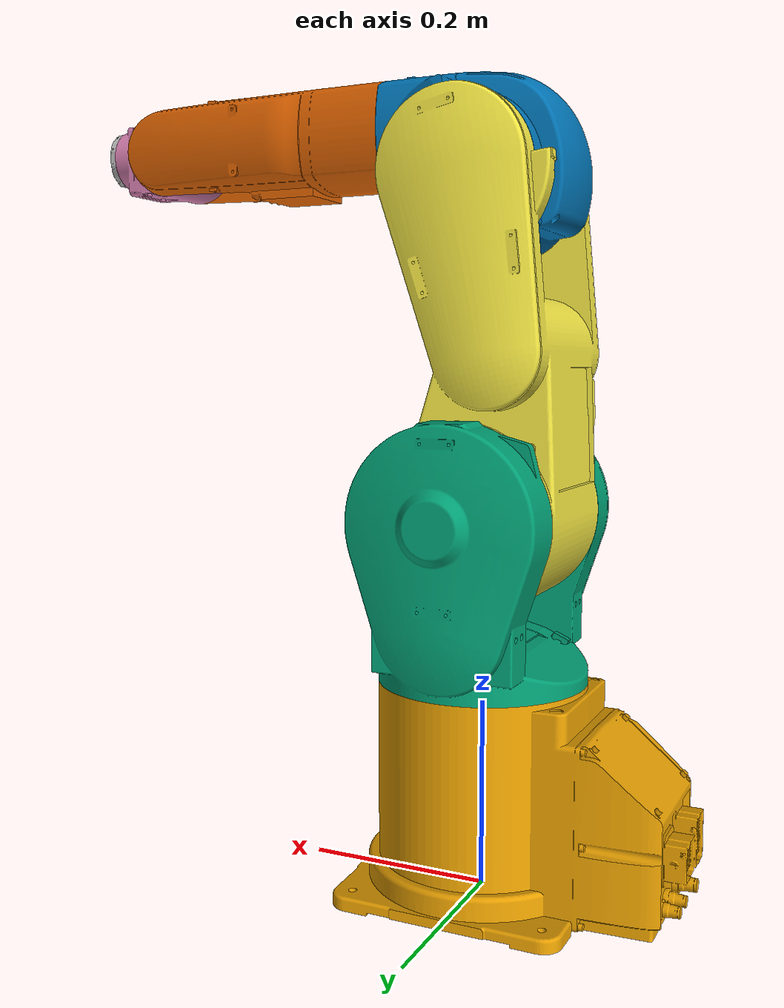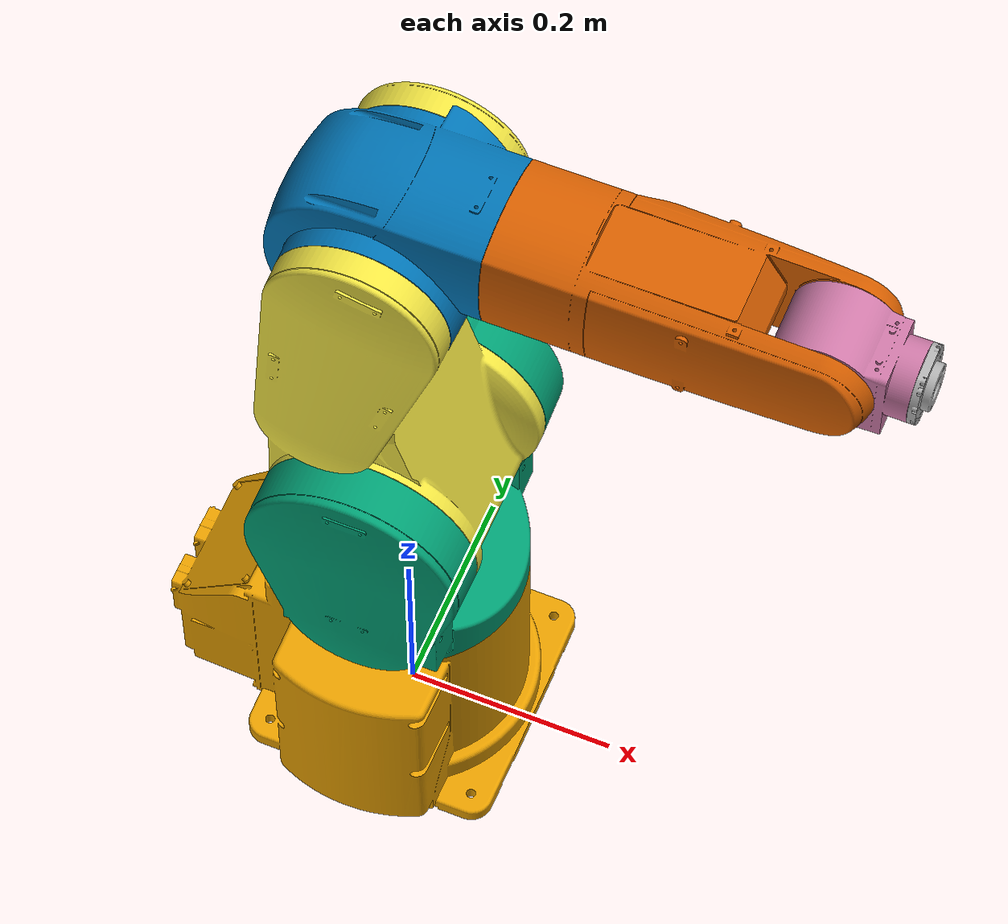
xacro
<?xml version="1.0"?>
<robot name="rv7f" xmlns:xacro="http://ros.org/wiki/xacro">
  <!-- Include -->
  <xacro:include filename="$(find mitsubishi_rv7f_description)/urdf/common.xacro" />
  <xacro:include filename="$(find mitsubishi_rv7f_description)/urdf/materials.xacro" />
  <xacro:include filename="$(find mitsubishi_rv7f_description)/urdf/rv7f/body.urdf.xacro" />
  <xacro:include filename="$(find mitsubishi_rv7f_description)/urdf/rv7f/body.gazebo.xacro"/>
  <xacro:include filename="$(find mitsubishi_rv7f_description)/urdf/rv7f/body.transmission.xacro"/>

  <!-- Radius Limits -->
  <xacro:property name="J1_upper_limit" value="${240*M_PI/180.0}"/>
  <xacro:property name="J1_lower_limit" value="-${J1_upper_limit}"/>

  <xacro:property name="J2_upper_limit" value="${125*M_PI/180.0}"/>
  <xacro:property name="J2_lower_limit" value="${-115*M_PI/180.0}"/>

  <xacro:property name="J3_upper_limit" value="${66*M_PI/180.0}"/>
  <xacro:property name="J3_lower_limit" value="${-89.999999*M_PI/180.0}"/>

  <xacro:property name="J4_upper_limit" value="${200*M_PI/180.0}"/>
  <xacro:property name="J4_lower_limit" value="-${J4_upper_limit}"/>

  <xacro:property name="J5_upper_limit" value="${120*M_PI/180.0}"/>
  <xacro:property name="J5_lower_limit" value="-${J5_upper_limit}"/>

  <xacro:property name="J6_upper_limit" value="${200*M_PI/180.0}"/>
  <xacro:property name="J6_lower_limit" value="-${J6_upper_limit}"/>

  <!-- Velocity Limits -->
  <xacro:property name="J1_velocity_limit" value="${360.0*M_PI/180.0}"/>
  <xacro:property name="J2_velocity_limit" value="${401.0*M_PI/180.0}"/>
  <xacro:property name="J3_velocity_limit" value="${450.0*M_PI/180.0}"/>
  <xacro:property name="J4_velocity_limit" value="${337.0*M_PI/180.0}"/>
  <xacro:property name="J5_velocity_limit" value="${450.0*M_PI/180.0}"/>
  <xacro:property name="J6_velocity_limit" value="${720.0*M_PI/180.0}"/>

  <xacro:base_link_v1 name="base_link" mass="12.928376">
    <inertia ixx="0.259755" ixy="-0.000334" ixz="-0.032452"
             iyy="0.287122" iyz="-0.023950"
             izz="0.148846"/>
  </xacro:base_link_v1>

  <xacro:link_v1 name="link_1"
                 mass="5.855081"
                 parent_link_name="base_link" child_link_name="link_1" joint_name="J1">
    <inertia ixx="0.109940" ixy="-0.000021" ixz="-0.001942"
             iyy="0.071902" iyz="-0.000051"
             izz="0.065726"/>
    <origin xyz="0 0 0.3995" rpy="0 0 0"/>
    <axis xyz="0 0 1"/>
    <limit effort="30.0" lower="${J1_lower_limit}" upper="${J1_upper_limit}" velocity="${J1_velocity_limit}"/>
  </xacro:link_v1>

  <xacro:link_v1 name="link_2"
                 mass="9.260846"
                 parent_link_name="link_1" child_link_name="link_2" joint_name="J2">
    <inertia ixx="0.295810" ixy="-0.000221" ixz="-0.019796"
             iyy="0.282036" iyz="0.001444"
             izz="0.053750"/>
    <origin xyz="0 0 0" rpy="0 0 0"/>
    <axis xyz="0 1 0"/>
    <limit effort="30.0" lower="${J2_lower_limit}" upper="${J2_upper_limit}" velocity="${J2_velocity_limit}"/>
  </xacro:link_v1>

  <xacro:link_v1 name="link_3"
                 mass="3.795239"
                 parent_link_name="link_2" child_link_name="link_3" joint_name="J3">
    <inertia ixx="0.014442" ixy="0.000207" ixz="0.001511"
             iyy="0.017521" iyz="0.000026"
             izz="0.014809"/>
    <origin xyz="0 0 0.340" rpy="0 0 0"/>
    <axis xyz="0 1 0"/>
    <limit effort="30.0" lower="${J3_lower_limit}" upper="${J3_upper_limit}" velocity="${J3_velocity_limit}"/>
  </xacro:link_v1>

  <xacro:link_v1 name="link_4"
                 mass="2.764278"
                 parent_link_name="link_3" child_link_name="link_4" joint_name="J4">
    <inertia ixx="0.005405" ixy="-0.000329" ixz="0.000192"
             iyy="0.080630" iyz="0.000000"
             izz="0.081901"/>
    <origin xyz="0.37 0 0.05" rpy="0 0 0"/>
    <axis xyz="1 0 0"/>
    <limit effort="30.0" lower="${J4_lower_limit}" upper="${J4_upper_limit}" velocity="${J4_velocity_limit}"/>
  </xacro:link_v1>

  <xacro:link_v1 name="link_5"
                 mass="0.580300"
                 parent_link_name="link_4" child_link_name="link_5" joint_name="J5">
    <inertia ixx="0.000519" ixy="0.000000" ixz="0.000026"
             iyy="0.000937" iyz="0.000000"
             izz="0.000827"/>
    <origin xyz="0 0 0" rpy="0 0 0"/>
    <axis xyz="0 1 0"/>
    <limit effort="30.0" lower="${J5_lower_limit}" upper="${J5_upper_limit}" velocity="${J5_velocity_limit}"/>
  </xacro:link_v1>

  <xacro:link_v1 name="link_6"
                 mass="0.025371"
                 parent_link_name="link_5" child_link_name="link_6" joint_name="J6">
    <inertia ixx="0.000011" ixy="0.000000" ixz="0.000000"
             iyy="0.000006" iyz="0.000000"
             izz="0.000007"/>
    <origin xyz="0.0713 0 0" rpy="0 0 0"/>
    <axis xyz="1 0 0"/>
    <limit effort="30.0" lower="${J6_lower_limit}" upper="${J6_upper_limit}" velocity="${J6_velocity_limit}"/>
  </xacro:link_v1>

  <!-- transmission -->
  <xacro:simple_jp_trans_v0 name="transmission_1"
                            joint_name="J1" actuator_name="motor_1"
                            reduction="1"/>
  <xacro:simple_jp_trans_v0 name="transmission_2"
                            joint_name="J2" actuator_name="motor_2"
                            reduction="1"/>
  <xacro:simple_jp_trans_v0 name="transmission_3"
                            joint_name="J3" actuator_name="motor_3"
                            reduction="1"/>
  <xacro:simple_jp_trans_v0 name="transmission_4"
                            joint_name="J4" actuator_name="motor_4"
                            reduction="1"/>
  <xacro:simple_jp_trans_v0 name="transmission_5"
                            joint_name="J5" actuator_name="motor_5"
                            reduction="1"/>
  <xacro:simple_jp_trans_v0 name="transmission_6"
                            joint_name="J6" actuator_name="motor_6"
                            reduction="1"/>

  <!-- gazebo -->
  <gazebo>
    <plugin name="gazebo_ros_control" filename="libgazebo_ros_control.so">
      <robotNamespace>/rv7f</robotNamespace>
      <robotSimType>gazebo_ros_control/DefaultRobotHWSim</robotSimType>
    </plugin>
  </gazebo>
  <xacro:gazebo_link_v1 name="base_link"/>
  <xacro:gazebo_link_v1 name="link_1"/>
  <xacro:gazebo_link_v1 name="link_2"/>
  <xacro:gazebo_link_v1 name="link_3"/>
  <xacro:gazebo_link_v1 name="link_4"/>
  <xacro:gazebo_link_v1 name="link_5"/>
  <xacro:gazebo_link_v1 name="link_6"/>
</robot>

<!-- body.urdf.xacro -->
<robot xmlns:xacro="http://ros.org/wiki/xacro">
  <xacro:macro name="base_link_v1" params="name mass *inertia">
    <link name="${name}">
      <visual>
        <geometry>
          <mesh filename="package://mitsubishi_rv7f_description/meshes/rv7f/visual/${name}.dae"/>
        </geometry>
      </visual>
      <collision>
        <geometry>
          <mesh filename="package://mitsubishi_rv7f_description/meshes/rv7f/collision/${name}.stl"/>
        </geometry>
      </collision>
      <inertial>
        <mass value="${mass}"/>
        <insert_block name="inertia"/>
      </inertial>
    </link>

  <link name="world"/>
  <joint name="world" type="fixed">
    <parent link="world"/>
    <child link="${name}"/>
  </joint>
  </xacro:macro>

  <xacro:macro name="link_v1" params="name mass parent_link_name child_link_name joint_name *inertia *joint_origin *joint_axis *joint_limit">
    <link name="${name}">
      <visual>
        <geometry>
          <mesh filename="package://mitsubishi_rv7f_description/meshes/rv7f/visual/${name}.dae"/>
        </geometry>
      </visual>
      <collision>
        <geometry>
          <mesh filename="package://mitsubishi_rv7f_description/meshes/rv7f/collision/${name}.stl"/>
        </geometry>
      </collision>
      <inertial>
        <mass value="${mass}"/>
        <insert_block name="inertia"/>
      </inertial>
    </link>

    <joint name="${joint_name}" type="revolute">
      <insert_block name="joint_origin"/>
      <parent link="${parent_link_name}"/>
      <child link="${child_link_name}"/>
      <insert_block name="joint_axis"/>
      <dynamics dampint="0.7" friction="0.7"/>
      <insert_block name="joint_limit"/>
    </joint>
  </xacro:macro>
</robot>
